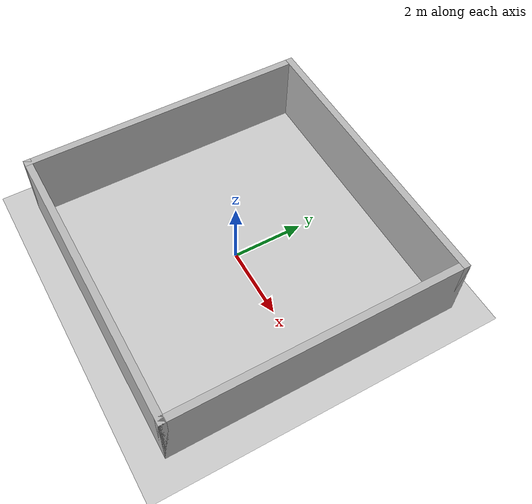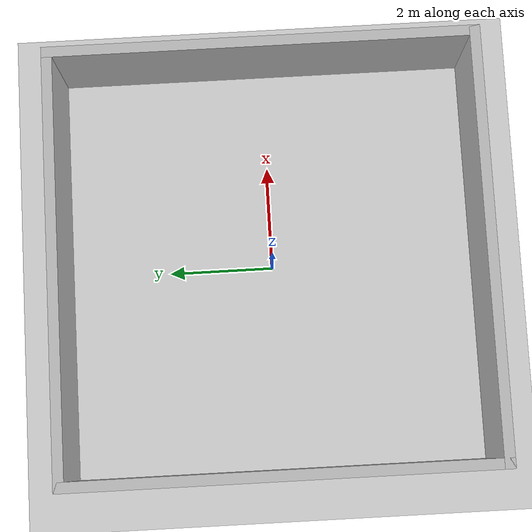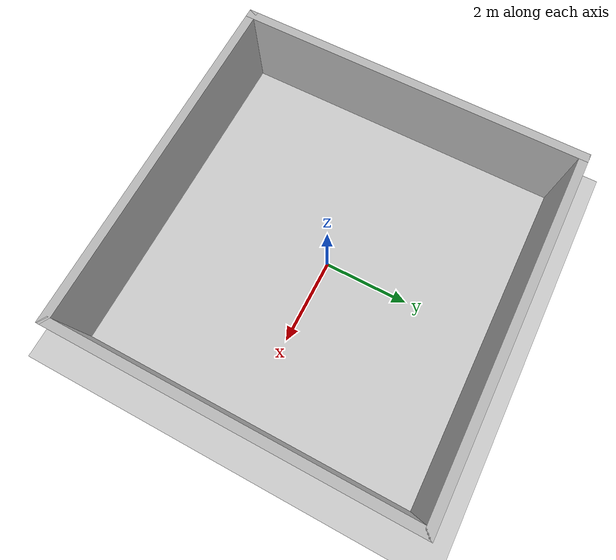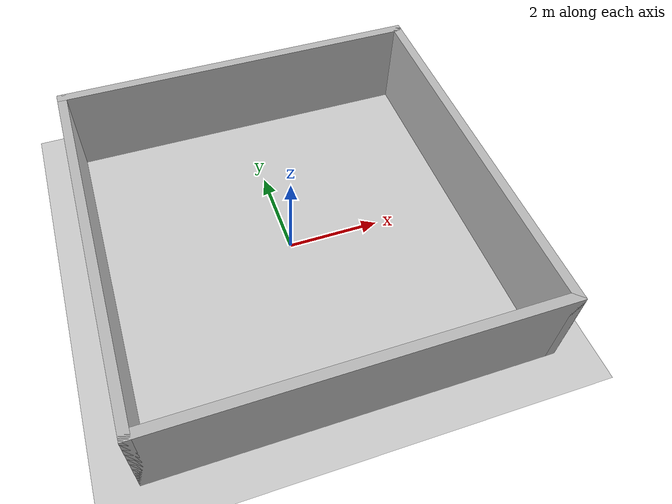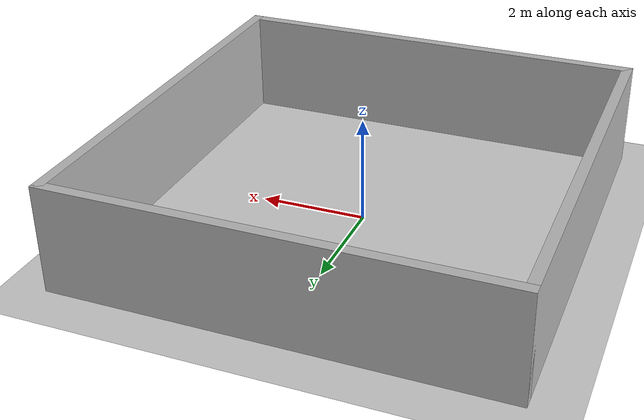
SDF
<sdf version="1.6">
 <world name="semantic_t_junction">
  <gravity>0 0 -9.8</gravity>
  <physics type="ode">
   <max_step_size>0.001</max_step_size>
   <real_time_factor>1</real_time_factor>
   <real_time_update_rate>1000</real_time_update_rate>
  </physics>
  <scene>
   <ambient>0.45 0.45 0.45 1</ambient>
   <background>0.72 0.72 0.72 1</background>
   <shadows>true</shadows>
  </scene>
  <light name="sun" type="directional">
   <pose>0 0 10 0 0 0</pose>
   <diffuse>0.8 0.8 0.8 1</diffuse>
   <specular>0.2 0.2 0.2 1</specular>
   <direction>-0.5 0.2 -0.9</direction>
  </light>
  <model name="ground_plane">
   <static>true</static>
   <link name="link">
    <collision name="collision">
     <geometry><plane><normal>0 0 1</normal><size>60 60</size></plane></geometry>
    </collision>
    <visual name="visual">
     <geometry><plane><normal>0 0 1</normal><size>60 60</size></plane></geometry>
     <material>
      <script><uri>file://media/materials/scripts/gazebo.material</uri><name>Gazebo/Grey</name></script>
     </material>
    </visual>
   </link>
  </model>
  <model name="north">
   <static>true</static>
   <pose>0 4 1 0 0 0</pose>
   <link name="wall">
    <collision name="collision"><geometry><box><size>8.2 0.2 2</size></box></geometry></collision>
    <visual name="visual"><geometry><box><size>8.2 0.2 2</size></box></geometry></visual>
   </link>
  </model>
  <model name="south">
   <static>true</static>
   <pose>0 -4 1 0 0 0</pose>
   <link name="wall">
    <collision name="collision"><geometry><box><size>8.2 0.2 2</size></box></geometry></collision>
    <visual name="visual"><geometry><box><size>8.2 0.2 2</size></box></geometry></visual>
   </link>
  </model>
  <model name="east">
   <static>true</static>
   <pose>4 0 1 0 0 0</pose>
   <link name="wall">
    <collision name="collision"><geometry><box><size>0.2 8.2 2</size></box></geometry></collision>
    <visual name="visual"><geometry><box><size>0.2 8.2 2</size></box></geometry></visual>
   </link>
  </model>
  <model name="west">
   <static>true</static>
   <pose>-4 0 1 0 0 0</pose>
   <link name="wall">
    <collision name="collision"><geometry><box><size>0.2 8.2 2</size></box></geometry></collision>
    <visual name="visual"><geometry><box><size>0.2 8.2 2</size></box></geometry></visual>
   </link>
  </model>
 </world>
</sdf>
